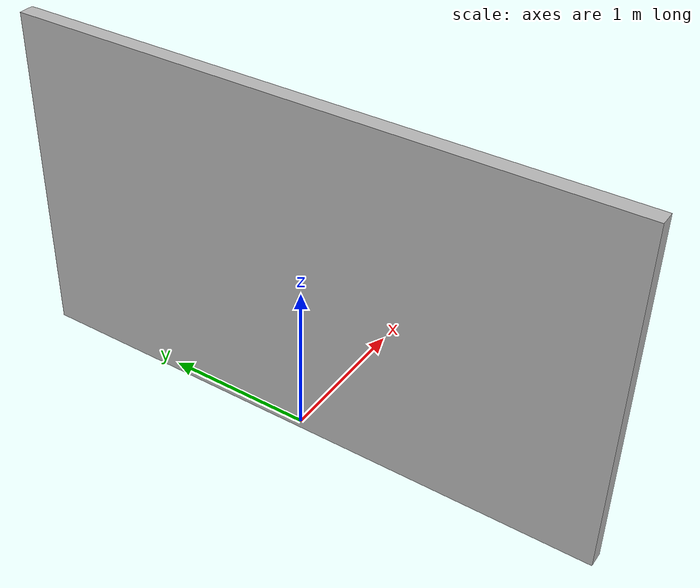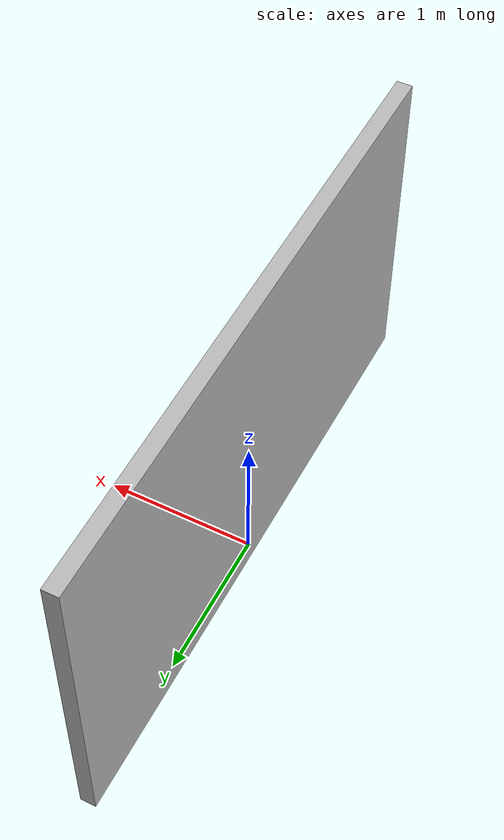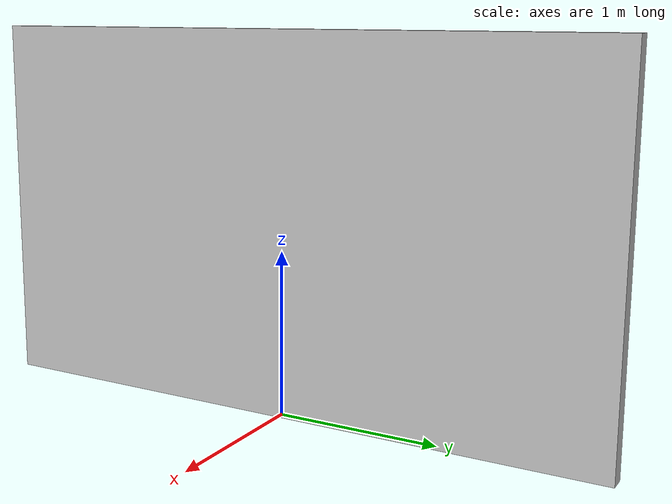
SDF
<?xml version="1.0" ?>
<sdf version="1.6">
  <model name="sidewall">
  <pose>0 0 1.143 0 0 0</pose>
  <static>true</static>
    <link name="link">
      <inertial>
        <mass>10.0</mass>
        <inertia>
          <ixx>17.61741068</ixx>
          <ixy>0.0</ixy>
          <ixz>0.0</ixz>
          <iyy>4.3459784048</iyy>
          <iyz>0.0</iyz>
          <izz>13.2885677248</izz>
        </inertia>
      </inertial>
      <collision name="collision">
        <geometry>
          <box>
            <size>0.1016 4.0 2.286</size>
          </box>
        </geometry>
      </collision>
      <visual name="visual">
        <geometry>
          <box>
            <size>0.1016 4.0 2.286</size>
          </box>
        </geometry>
        <material>
            <script>
                <uri>model://sidewall/materials/scripts</uri>
                <uri>model://sidewall/materials/textures</uri>
                <name>sidewall/wall</name>
            </script>
        </material>
      </visual>
    </link>
  </model>
</sdf>
